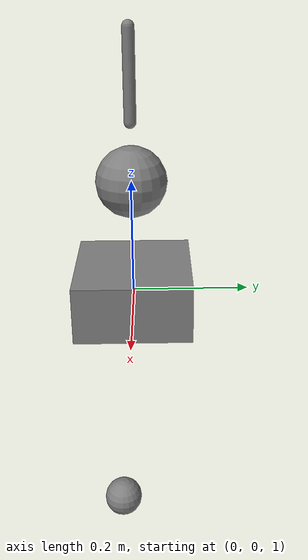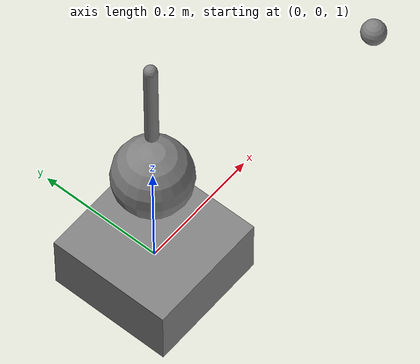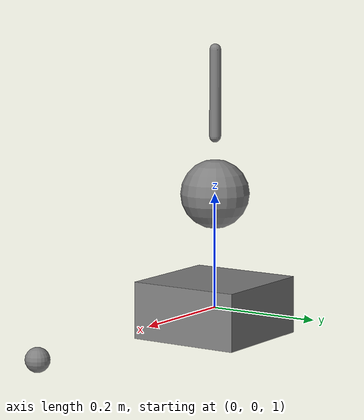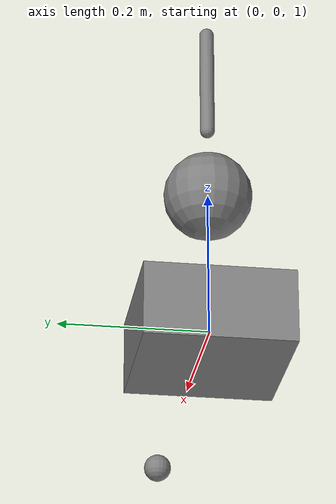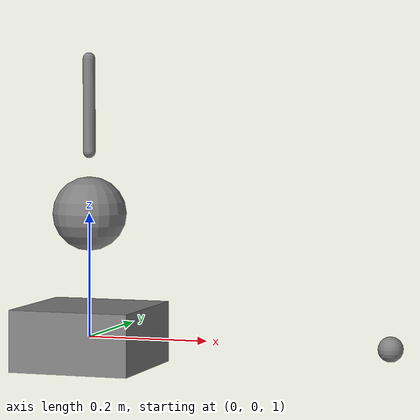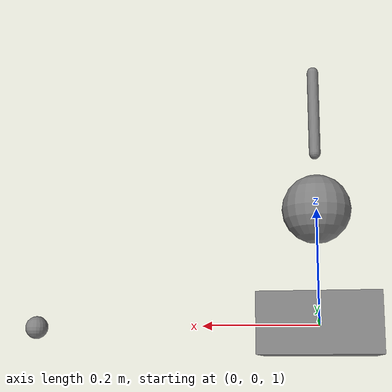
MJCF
<mujoco model="floating">
  <compiler angle="radian"/>
  <worldbody>
    <body name="mocap_target" mocap="true" pos="0.5 0 1">
      <geom name="gm" type="sphere" size="0.02" contype="0" conaffinity="0"/>
    </body>
    <body name="base" pos="0 0 1">
      <freejoint name="root"/>
      <geom name="gb" type="box" size="0.1 0.1 0.05"/>
      <body name="head" pos="0 0 0.2">
        <joint name="neck" type="ball" range="0 1.0" limited="true"/>
        <geom name="gh" type="sphere" size="0.06"/>
        <body name="antenna" pos="0 0 0.1">
          <joint name="ant" type="hinge" axis="1 0 0" range="-1 1" limited="true"/>
          <geom name="ga" type="capsule" fromto="0 0 0 0 0 0.15" size="0.01"/>
          <site name="tip" pos="0 0 0.15" size="0.005"/>
        </body>
      </body>
    </body>
  </worldbody>
</mujoco>
